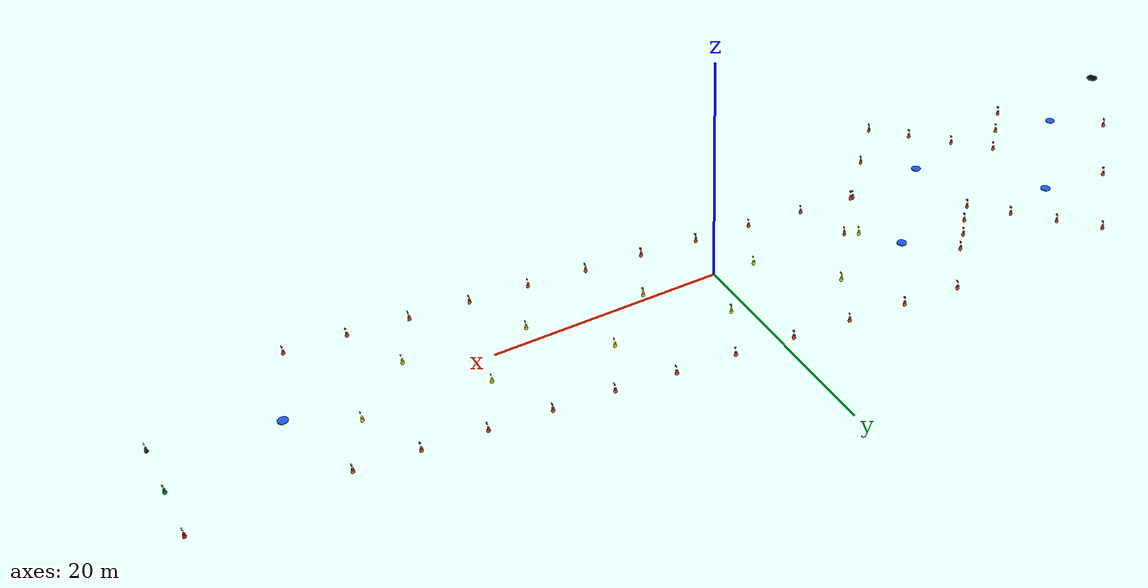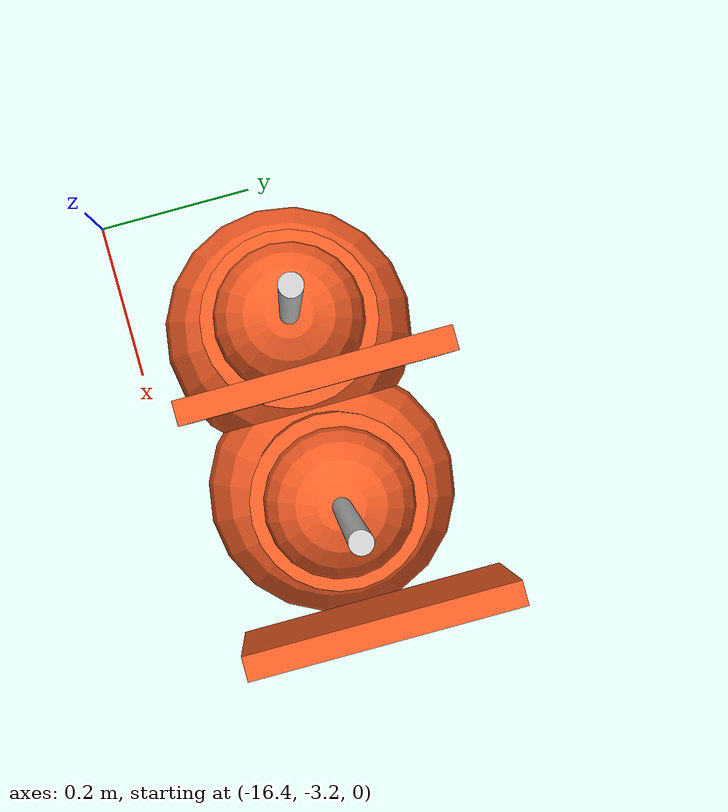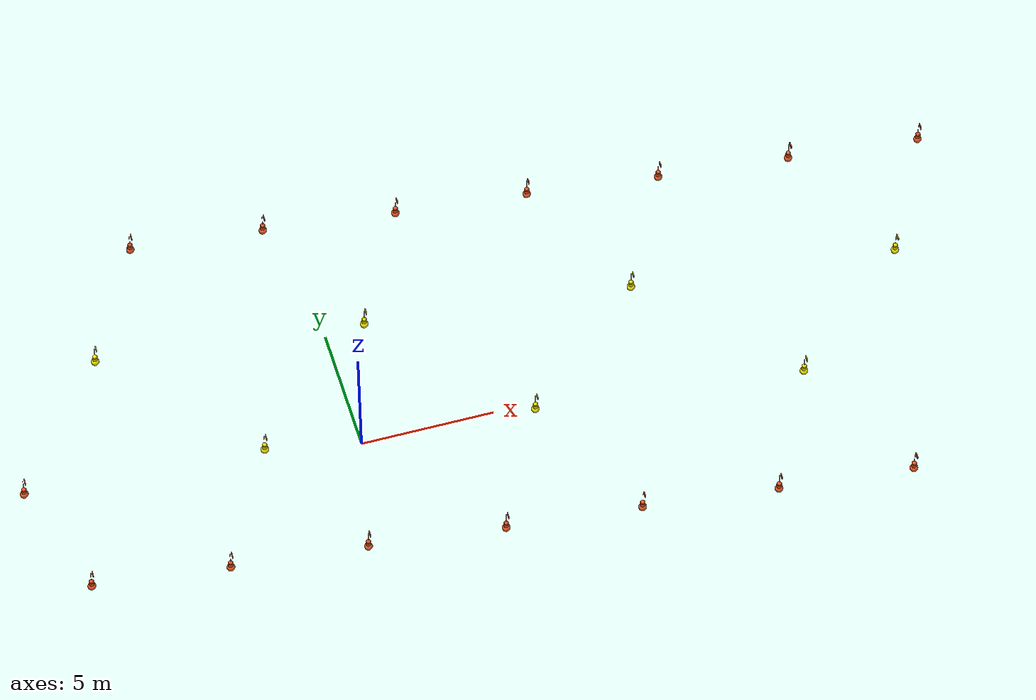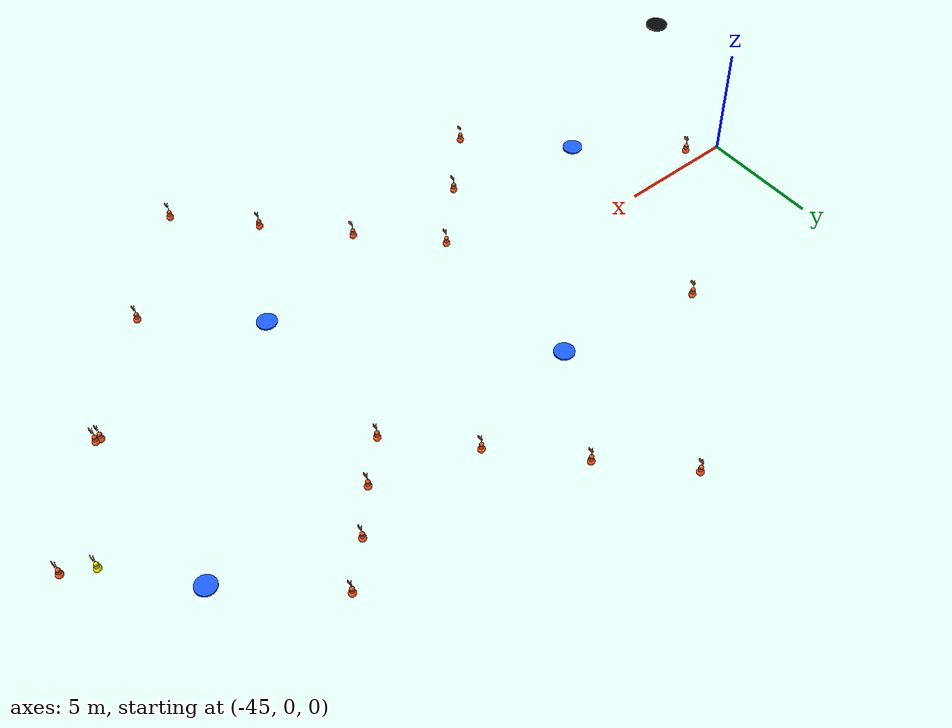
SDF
<sdf version="1.9">
 <world name="tecnofest_asv_course">
  <gravity>0 0 -9.81</gravity>
  <physics name="tecnofest_4ms" type="dart">
   <max_step_size>0.004</max_step_size>
   <real_time_factor>1.0</real_time_factor>
  </physics>
  <spherical_coordinates>
   <surface_model>EARTH_WGS84</surface_model>
   <world_frame_orientation>ENU</world_frame_orientation>
   <latitude_deg>-6.200000</latitude_deg>
   <longitude_deg>106.816666</longitude_deg>
   <elevation>0.0</elevation>
   <heading_deg>0.0</heading_deg>
  </spherical_coordinates>
  <plugin filename="gz-sim-physics-system" name="gz::sim::systems::Physics"/>
  <plugin filename="gz-sim-user-commands-system" name="gz::sim::systems::UserCommands"/>
  <plugin filename="gz-sim-sensors-system" name="gz::sim::systems::Sensors">
   <render_engine>ogre2</render_engine>
  </plugin>
  <plugin filename="gz-sim-scene-broadcaster-system" name="gz::sim::systems::SceneBroadcaster"/>
  <plugin filename="gz-sim-contact-system" name="gz::sim::systems::Contact"/>
  <plugin filename="gz-sim-navsat-system" name="gz::sim::systems::NavSat"/>
  <plugin filename="gz-sim-imu-system" name="gz::sim::systems::Imu"/>
  <scene><ambient>0.75 0.78 0.80 1</ambient><background>0.70 0.82 0.92 1</background></scene>
  <light type="directional" name="sun">
   <pose>0 0 40 0 0 0</pose>
   <diffuse>0.95 0.92 0.85 1</diffuse>
   <specular>0.45 0.45 0.45 1</specular>
   <direction>-0.45 0.15 -0.88</direction>
  </light>
  <include>
   <name>startpoint_marker</name>
   <pose>-49.0 -8.0 0.02 0 0 0</pose>
   <uri>model://tecnofest_startpoint_black</uri>
  </include>
  <include>
   <name>gn1_task_point</name>
   <pose>-40.0 -4.0 0.02 0 0 0</pose>
   <uri>model://tecnofest_task_point_blue</uri>
  </include>
  <include>
   <name>gn2_task_point</name>
   <pose>-32.0 4.5 0.02 0 0 0</pose>
   <uri>model://tecnofest_task_point_blue</uri>
  </include>
  <include>
   <name>gn3_task_point</name>
   <pose>-24.0 -4.0 0.02 0 0 0</pose>
   <uri>model://tecnofest_task_point_blue</uri>
  </include>
  <include>
   <name>gn4_task_point</name>
   <pose>-16.0 4.5 0.02 0 0 0</pose>
   <uri>model://tecnofest_task_point_blue</uri>
  </include>
  <include>
   <name>gn5_task_point</name>
   <pose>36.5 -1.2 0.02 0 0 0</pose>
   <uri>model://tecnofest_task_point_blue</uri>
  </include>
  <include>
   <name>p1_s1_upper_01</name>
   <pose>-43.6 -0.6 0.0 0 0 0</pose>
   <uri>model://tecnofest_buoy_boundary_orange</uri>
  </include>
  <include>
   <name>p1_s1_upper_02</name>
   <pose>-37.8 5.6 0.0 0 0 0</pose>
   <uri>model://tecnofest_buoy_boundary_orange</uri>
  </include>
  <include>
   <name>p1_s1_upper_03</name>
   <pose>-32.0 11.8 0.0 0 0 0</pose>
   <uri>model://tecnofest_buoy_boundary_orange</uri>
  </include>
  <include>
   <name>p1_s1_lower_01</name>
   <pose>-36.4 -7.4 0.0 0 0 0</pose>
   <uri>model://tecnofest_buoy_boundary_orange</uri>
  </include>
  <include>
   <name>p1_s1_lower_02</name>
   <pose>-34.2 -5.1 0.0 0 0 0</pose>
   <uri>model://tecnofest_buoy_boundary_orange</uri>
  </include>
  <include>
   <name>p1_s1_lower_03</name>
   <pose>-32.0 -2.8 0.0 0 0 0</pose>
   <uri>model://tecnofest_buoy_boundary_orange</uri>
  </include>
  <include>
   <name>p1_s2_upper_01</name>
   <pose>-29.3 9.0 0.0 0 0 0</pose>
   <uri>model://tecnofest_buoy_boundary_orange</uri>
  </include>
  <include>
   <name>p1_s2_upper_02</name>
   <pose>-26.6 6.1 0.0 0 0 0</pose>
   <uri>model://tecnofest_buoy_boundary_orange</uri>
  </include>
  <include>
   <name>p1_s2_upper_03</name>
   <pose>-24.0 3.3 0.0 0 0 0</pose>
   <uri>model://tecnofest_buoy_boundary_orange</uri>
  </include>
  <include>
   <name>p1_s2_lower_01</name>
   <pose>-29.3 -5.6 0.0 0 0 0</pose>
   <uri>model://tecnofest_buoy_boundary_orange</uri>
  </include>
  <include>
   <name>p1_s2_lower_02</name>
   <pose>-26.6 -8.5 0.0 0 0 0</pose>
   <uri>model://tecnofest_buoy_boundary_orange</uri>
  </include>
  <include>
   <name>p1_s2_lower_03</name>
   <pose>-24.0 -11.3 0.0 0 0 0</pose>
   <uri>model://tecnofest_buoy_boundary_orange</uri>
  </include>
  <include>
   <name>p1_s3_upper_01</name>
   <pose>-22.5 4.8 0.0 0 0 0</pose>
   <uri>model://tecnofest_buoy_boundary_orange</uri>
  </include>
  <include>
   <name>p1_s3_upper_02</name>
   <pose>-21.1 6.4 0.0 0 0 0</pose>
   <uri>model://tecnofest_buoy_boundary_orange</uri>
  </include>
  <include>
   <name>p1_s3_upper_03</name>
   <pose>-19.6 7.9 0.0 0 0 0</pose>
   <uri>model://tecnofest_buoy_boundary_orange</uri>
  </include>
  <include>
   <name>p1_s3_lower_01</name>
   <pose>-20.1 -7.2 0.0 0 0 0</pose>
   <uri>model://tecnofest_buoy_boundary_orange</uri>
  </include>
  <include>
   <name>p1_s3_lower_02</name>
   <pose>-16.2 -3.0 0.0 0 0 0</pose>
   <uri>model://tecnofest_buoy_boundary_orange</uri>
  </include>
  <include>
   <name>p1_s3_lower_03</name>
   <pose>-12.4 1.1 0.0 0 0 0</pose>
   <uri>model://tecnofest_buoy_boundary_orange</uri>
  </include>
  <include>
   <name>p2_top_edge_01</name>
   <pose>-16.0 12.0 0.0 0 0 0</pose>
   <uri>model://tecnofest_buoy_boundary_orange</uri>
  </include>
  <include>
   <name>p2_top_edge_02</name>
   <pose>-11.0 11.5 0.0 0 0 0</pose>
   <uri>model://tecnofest_buoy_boundary_orange</uri>
  </include>
  <include>
   <name>p2_top_edge_03</name>
   <pose>-6.0 10.9 0.0 0 0 0</pose>
   <uri>model://tecnofest_buoy_boundary_orange</uri>
  </include>
  <include>
   <name>p2_top_edge_04</name>
   <pose>-1.0 10.4 0.0 0 0 0</pose>
   <uri>model://tecnofest_buoy_boundary_orange</uri>
  </include>
  <include>
   <name>p2_top_edge_05</name>
   <pose>4.0 9.8 0.0 0 0 0</pose>
   <uri>model://tecnofest_buoy_boundary_orange</uri>
  </include>
  <include>
   <name>p2_top_edge_06</name>
   <pose>9.0 9.3 0.0 0 0 0</pose>
   <uri>model://tecnofest_buoy_boundary_orange</uri>
  </include>
  <include>
   <name>p2_top_edge_07</name>
   <pose>14.0 8.7 0.0 0 0 0</pose>
   <uri>model://tecnofest_buoy_boundary_orange</uri>
  </include>
  <include>
   <name>p2_top_edge_08</name>
   <pose>19.0 8.2 0.0 0 0 0</pose>
   <uri>model://tecnofest_buoy_boundary_orange</uri>
  </include>
  <include>
   <name>p2_top_edge_09</name>
   <pose>24.0 7.7 0.0 0 0 0</pose>
   <uri>model://tecnofest_buoy_boundary_orange</uri>
  </include>
  <include>
   <name>p2_top_edge_10</name>
   <pose>29.0 7.1 0.0 0 0 0</pose>
   <uri>model://tecnofest_buoy_boundary_orange</uri>
  </include>
  <include>
   <name>p2_top_edge_11</name>
   <pose>34.0 6.6 0.0 0 0 0</pose>
   <uri>model://tecnofest_buoy_boundary_orange</uri>
  </include>
  <include>
   <name>p2_bottom_edge_01</name>
   <pose>-16.0 -3.0 0.0 0 0 0</pose>
   <uri>model://tecnofest_buoy_boundary_orange</uri>
  </include>
  <include>
   <name>p2_bottom_edge_02</name>
   <pose>-11.0 -3.5 0.0 0 0 0</pose>
   <uri>model://tecnofest_buoy_boundary_orange</uri>
  </include>
  <include>
   <name>p2_bottom_edge_03</name>
   <pose>-6.0 -4.1 0.0 0 0 0</pose>
   <uri>model://tecnofest_buoy_boundary_orange</uri>
  </include>
  <include>
   <name>p2_bottom_edge_04</name>
   <pose>-1.0 -4.6 0.0 0 0 0</pose>
   <uri>model://tecnofest_buoy_boundary_orange</uri>
  </include>
  <include>
   <name>p2_bottom_edge_05</name>
   <pose>4.0 -5.2 0.0 0 0 0</pose>
   <uri>model://tecnofest_buoy_boundary_orange</uri>
  </include>
  <include>
   <name>p2_bottom_edge_06</name>
   <pose>9.0 -5.7 0.0 0 0 0</pose>
   <uri>model://tecnofest_buoy_boundary_orange</uri>
  </include>
  <include>
   <name>p2_bottom_edge_07</name>
   <pose>14.0 -6.3 0.0 0 0 0</pose>
   <uri>model://tecnofest_buoy_boundary_orange</uri>
  </include>
  <include>
   <name>p2_bottom_edge_08</name>
   <pose>19.0 -6.8 0.0 0 0 0</pose>
   <uri>model://tecnofest_buoy_boundary_orange</uri>
  </include>
  <include>
   <name>p2_bottom_edge_09</name>
   <pose>24.0 -7.3 0.0 0 0 0</pose>
   <uri>model://tecnofest_buoy_boundary_orange</uri>
  </include>
  <include>
   <name>p2_bottom_edge_10</name>
   <pose>29.0 -7.9 0.0 0 0 0</pose>
   <uri>model://tecnofest_buoy_boundary_orange</uri>
  </include>
  <include>
   <name>p2_bottom_edge_11</name>
   <pose>34.0 -8.4 0.0 0 0 0</pose>
   <uri>model://tecnofest_buoy_boundary_orange</uri>
  </include>
  <include>
   <name>p2_obstacle_01</name>
   <pose>-13.5 1.7 0.0 0 0 0</pose>
   <uri>model://tecnofest_buoy_obstacle_yellow</uri>
  </include>
  <include>
   <name>p2_obstacle_02</name>
   <pose>-8.5 6.2 0.0 0 0 0</pose>
   <uri>model://tecnofest_buoy_obstacle_yellow</uri>
  </include>
  <include>
   <name>p2_obstacle_03</name>
   <pose>-3.5 0.6 0.0 0 0 0</pose>
   <uri>model://tecnofest_buoy_obstacle_yellow</uri>
  </include>
  <include>
   <name>p2_obstacle_04</name>
   <pose>1.5 5.1 0.0 0 0 0</pose>
   <uri>model://tecnofest_buoy_obstacle_yellow</uri>
  </include>
  <include>
   <name>p2_obstacle_05</name>
   <pose>6.5 -0.4 0.0 0 0 0</pose>
   <uri>model://tecnofest_buoy_obstacle_yellow</uri>
  </include>
  <include>
   <name>p2_obstacle_06</name>
   <pose>11.5 4.0 0.0 0 0 0</pose>
   <uri>model://tecnofest_buoy_obstacle_yellow</uri>
  </include>
  <include>
   <name>p2_obstacle_07</name>
   <pose>16.5 -1.5 0.0 0 0 0</pose>
   <uri>model://tecnofest_buoy_obstacle_yellow</uri>
  </include>
  <include>
   <name>p2_obstacle_08</name>
   <pose>21.5 2.9 0.0 0 0 0</pose>
   <uri>model://tecnofest_buoy_obstacle_yellow</uri>
  </include>
  <include>
   <name>p2_obstacle_09</name>
   <pose>26.5 -2.6 0.0 0 0 0</pose>
   <uri>model://tecnofest_buoy_obstacle_yellow</uri>
  </include>
  <include>
   <name>p2_obstacle_10</name>
   <pose>31.5 1.9 0.0 0 0 0</pose>
   <uri>model://tecnofest_buoy_obstacle_yellow</uri>
  </include>
  <include>
   <name>course3_target_red</name>
   <pose>46.0 6.6 0.0 0 0 0</pose>
   <uri>model://tecnofest_buoy_target_red</uri>
  </include>
  <include>
   <name>course3_target_green</name>
   <pose>46.0 1.8 0.0 0 0 0</pose>
   <uri>model://tecnofest_buoy_target_green</uri>
  </include>
  <include>
   <name>course3_target_black</name>
   <pose>46.0 -3.0 0.0 0 0 0</pose>
   <uri>model://tecnofest_buoy_target_black</uri>
  </include>
 </world>
</sdf>

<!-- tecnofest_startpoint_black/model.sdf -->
<sdf version="1.9">
  <model name="tecnofest_startpoint_black">
    <static>true</static>
    <link name="marker">
      <visual name="black_disk">
        <pose>0 0 0.035 0 0 0</pose>
        <geometry>
          <cylinder>
            <radius>0.50</radius>
            <length>0.07</length>
          </cylinder>
        </geometry>
        <material>
          <ambient>0.005 0.005 0.005 1</ambient>
          <diffuse>0.015 0.015 0.015 1</diffuse>
          <specular>0.03 0.03 0.03 1</specular>
        </material>
      </visual>
    </link>
  </model>
</sdf>

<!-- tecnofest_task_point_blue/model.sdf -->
<sdf version="1.9">
  <model name="tecnofest_task_point_blue">
    <static>true</static>
    <link name="marker">
      <visual name="blue_disk">
        <pose>0 0 0.035 0 0 0</pose>
        <geometry>
          <cylinder>
            <radius>0.42</radius>
            <length>0.07</length>
          </cylinder>
        </geometry>
        <material>
          <ambient>0.05 0.24 0.75 1</ambient>
          <diffuse>0.10 0.35 0.95 1</diffuse>
          <specular>0.15 0.20 0.35 1</specular>
        </material>
      </visual>
    </link>
  </model>
</sdf>

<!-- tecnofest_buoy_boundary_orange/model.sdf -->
<sdf version="1.9">
  <model name="tecnofest_buoy_boundary_orange">
    <static>true</static>
    <link name="body">
      <visual name="lower_teardrop"><pose>0 0 0.18 0 0 0</pose><geometry><sphere><radius>0.15</radius></sphere></geometry><material><ambient>0.78 0.28 0.05 1</ambient><diffuse>0.97 0.37 0.15 1</diffuse><specular>0.50 0.32 0.20 1</specular></material></visual>
      <visual name="upper_neck"><pose>0 0 0.34 0 0 0</pose><geometry><cylinder><radius>0.095</radius><length>0.24</length></cylinder></geometry><material><ambient>0.78 0.28 0.05 1</ambient><diffuse>0.97 0.37 0.15 1</diffuse><specular>0.50 0.32 0.20 1</specular></material></visual>
      <visual name="top_cap"><pose>0 0 0.48 0 0 0</pose><geometry><sphere><radius>0.08</radius></sphere></geometry><material><ambient>0.78 0.28 0.05 1</ambient><diffuse>0.97 0.37 0.15 1</diffuse><specular>0.50 0.32 0.20 1</specular></material></visual>
      <visual name="flag_pole"><pose>0 0 0.75 0 0 0</pose><geometry><cylinder><radius>0.01</radius><length>0.48</length></cylinder></geometry><material><ambient>0.8 0.8 0.8 1</ambient><diffuse>0.8 0.8 0.8 1</diffuse></material></visual>
      <visual name="flag"><pose>0.07 0 0.91 0 0 0</pose><geometry><box><size>0.02 0.22 0.14</size></box></geometry><material><ambient>0.78 0.28 0.05 1</ambient><diffuse>0.97 0.37 0.15 1</diffuse></material></visual>
      <collision name="body_collision"><pose>0 0 0.25 0 0 0</pose><geometry><cylinder><radius>0.15</radius><length>0.50</length></cylinder></geometry></collision>
      <collision name="lidar_target_collision"><pose>0 0 0.78 0 0 0</pose><geometry><cylinder><radius>0.12</radius><length>1.20</length></cylinder></geometry></collision>
    </link>
  </model>
</sdf>

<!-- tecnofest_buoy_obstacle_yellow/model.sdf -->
<sdf version="1.9">
  <model name="tecnofest_buoy_obstacle_yellow">
    <static>true</static>
    <link name="body">
      <visual name="lower_teardrop"><pose>0 0 0.18 0 0 0</pose><geometry><sphere><radius>0.15</radius></sphere></geometry><material><ambient>0.75 0.72 0.00 1</ambient><diffuse>1.00 0.96 0.00 1</diffuse><specular>0.65 0.62 0.20 1</specular></material></visual>
      <visual name="upper_neck"><pose>0 0 0.34 0 0 0</pose><geometry><cylinder><radius>0.095</radius><length>0.24</length></cylinder></geometry><material><ambient>0.75 0.72 0.00 1</ambient><diffuse>1.00 0.96 0.00 1</diffuse><specular>0.65 0.62 0.20 1</specular></material></visual>
      <visual name="top_cap"><pose>0 0 0.48 0 0 0</pose><geometry><sphere><radius>0.08</radius></sphere></geometry><material><ambient>0.75 0.72 0.00 1</ambient><diffuse>1.00 0.96 0.00 1</diffuse><specular>0.65 0.62 0.20 1</specular></material></visual>
      <visual name="flag_pole"><pose>0 0 0.75 0 0 0</pose><geometry><cylinder><radius>0.01</radius><length>0.48</length></cylinder></geometry><material><ambient>0.8 0.8 0.8 1</ambient><diffuse>0.8 0.8 0.8 1</diffuse></material></visual>
      <visual name="flag"><pose>0.07 0 0.91 0 0 0</pose><geometry><box><size>0.02 0.22 0.14</size></box></geometry><material><ambient>0.75 0.72 0.00 1</ambient><diffuse>1.00 0.96 0.00 1</diffuse></material></visual>
      <collision name="body_collision"><pose>0 0 0.25 0 0 0</pose><geometry><cylinder><radius>0.15</radius><length>0.50</length></cylinder></geometry></collision>
      <collision name="lidar_target_collision"><pose>0 0 0.78 0 0 0</pose><geometry><cylinder><radius>0.12</radius><length>1.20</length></cylinder></geometry></collision>
    </link>
  </model>
</sdf>

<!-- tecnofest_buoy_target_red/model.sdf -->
<sdf version="1.9">
  <model name="tecnofest_buoy_target_red">
    <static>true</static>
    <link name="body">
      <visual name="lower_teardrop"><pose>0 0 0.18 0 0 0</pose><geometry><sphere><radius>0.15</radius></sphere></geometry><material><ambient>0.65 0.03 0.00 1</ambient><diffuse>1.00 0.06 0.00 1</diffuse><specular>0.45 0.20 0.18 1</specular></material></visual>
      <visual name="upper_neck"><pose>0 0 0.34 0 0 0</pose><geometry><cylinder><radius>0.095</radius><length>0.24</length></cylinder></geometry><material><ambient>0.65 0.03 0.00 1</ambient><diffuse>1.00 0.06 0.00 1</diffuse><specular>0.45 0.20 0.18 1</specular></material></visual>
      <visual name="top_cap"><pose>0 0 0.48 0 0 0</pose><geometry><sphere><radius>0.08</radius></sphere></geometry><material><ambient>0.65 0.03 0.00 1</ambient><diffuse>1.00 0.06 0.00 1</diffuse><specular>0.45 0.20 0.18 1</specular></material></visual>
      <visual name="flag_pole"><pose>0 0 0.75 0 0 0</pose><geometry><cylinder><radius>0.01</radius><length>0.48</length></cylinder></geometry><material><ambient>0.8 0.8 0.8 1</ambient><diffuse>0.8 0.8 0.8 1</diffuse></material></visual>
      <visual name="flag"><pose>0.07 0 0.91 0 0 0</pose><geometry><box><size>0.02 0.22 0.14</size></box></geometry><material><ambient>0.65 0.03 0.00 1</ambient><diffuse>1.00 0.06 0.00 1</diffuse></material></visual>
      <collision name="body_collision"><pose>0 0 0.25 0 0 0</pose><geometry><cylinder><radius>0.15</radius><length>0.50</length></cylinder></geometry></collision>
      <collision name="lidar_target_collision"><pose>0 0 0.78 0 0 0</pose><geometry><cylinder><radius>0.12</radius><length>1.20</length></cylinder></geometry></collision>
    </link>
  </model>
</sdf>

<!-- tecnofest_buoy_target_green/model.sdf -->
<sdf version="1.9">
  <model name="tecnofest_buoy_target_green">
    <static>true</static>
    <link name="body">
      <visual name="lower_teardrop"><pose>0 0 0.18 0 0 0</pose><geometry><sphere><radius>0.15</radius></sphere></geometry><material><ambient>0.00 0.34 0.12 1</ambient><diffuse>0.00 0.64 0.25 1</diffuse><specular>0.18 0.45 0.25 1</specular></material></visual>
      <visual name="upper_neck"><pose>0 0 0.34 0 0 0</pose><geometry><cylinder><radius>0.095</radius><length>0.24</length></cylinder></geometry><material><ambient>0.00 0.34 0.12 1</ambient><diffuse>0.00 0.64 0.25 1</diffuse><specular>0.18 0.45 0.25 1</specular></material></visual>
      <visual name="top_cap"><pose>0 0 0.48 0 0 0</pose><geometry><sphere><radius>0.08</radius></sphere></geometry><material><ambient>0.00 0.34 0.12 1</ambient><diffuse>0.00 0.64 0.25 1</diffuse><specular>0.18 0.45 0.25 1</specular></material></visual>
      <visual name="flag_pole"><pose>0 0 0.75 0 0 0</pose><geometry><cylinder><radius>0.01</radius><length>0.48</length></cylinder></geometry><material><ambient>0.8 0.8 0.8 1</ambient><diffuse>0.8 0.8 0.8 1</diffuse></material></visual>
      <visual name="flag"><pose>0.07 0 0.91 0 0 0</pose><geometry><box><size>0.02 0.22 0.14</size></box></geometry><material><ambient>0.00 0.34 0.12 1</ambient><diffuse>0.00 0.64 0.25 1</diffuse></material></visual>
      <collision name="body_collision"><pose>0 0 0.25 0 0 0</pose><geometry><cylinder><radius>0.15</radius><length>0.50</length></cylinder></geometry></collision>
      <collision name="lidar_target_collision"><pose>0 0 0.78 0 0 0</pose><geometry><cylinder><radius>0.12</radius><length>1.20</length></cylinder></geometry></collision>
    </link>
  </model>
</sdf>

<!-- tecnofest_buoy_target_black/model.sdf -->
<sdf version="1.9">
  <model name="tecnofest_buoy_target_black">
    <static>true</static>
    <link name="body">
      <pose>0 0 0 0 0 0</pose>
      <visual name="lower_teardrop">
        <pose>0 0 0.18 0 0 0</pose>
        <geometry><sphere><radius>0.15</radius></sphere></geometry>
        <material><ambient>0.01 0.01 0.01 1</ambient><diffuse>0.02 0.02 0.018 1</diffuse><specular>0.10 0.10 0.10 1</specular></material>
      </visual>
      <visual name="upper_neck">
        <pose>0 0 0.34 0 0 0</pose>
        <geometry><cylinder><radius>0.095</radius><length>0.24</length></cylinder></geometry>
        <material><ambient>0.01 0.01 0.01 1</ambient><diffuse>0.02 0.02 0.018 1</diffuse><specular>0.10 0.10 0.10 1</specular></material>
      </visual>
      <visual name="top_cap">
        <pose>0 0 0.48 0 0 0</pose>
        <geometry><sphere><radius>0.08</radius></sphere></geometry>
        <material><ambient>0.01 0.01 0.01 1</ambient><diffuse>0.02 0.02 0.018 1</diffuse><specular>0.10 0.10 0.10 1</specular></material>
      </visual>
      <visual name="flag_pole">
        <pose>0 0 0.75 0 0 0</pose>
        <geometry><cylinder><radius>0.01</radius><length>0.48</length></cylinder></geometry>
        <material><ambient>0.8 0.8 0.8 1</ambient><diffuse>0.8 0.8 0.8 1</diffuse></material>
      </visual>
      <visual name="flag">
        <pose>0.07 0 0.91 0 0 0</pose>
        <geometry><box><size>0.02 0.22 0.14</size></box></geometry>
        <material><ambient>0.01 0.01 0.01 1</ambient><diffuse>0.02 0.02 0.018 1</diffuse></material>
      </visual>
      <collision name="body_collision">
        <pose>0 0 0.25 0 0 0</pose>
        <geometry><cylinder><radius>0.15</radius><length>0.50</length></cylinder></geometry>
      </collision>
      <collision name="lidar_target_collision">
        <pose>0 0 0.78 0 0 0</pose>
        <geometry><cylinder><radius>0.12</radius><length>1.20</length></cylinder></geometry>
      </collision>
    </link>
  </model>
</sdf>
